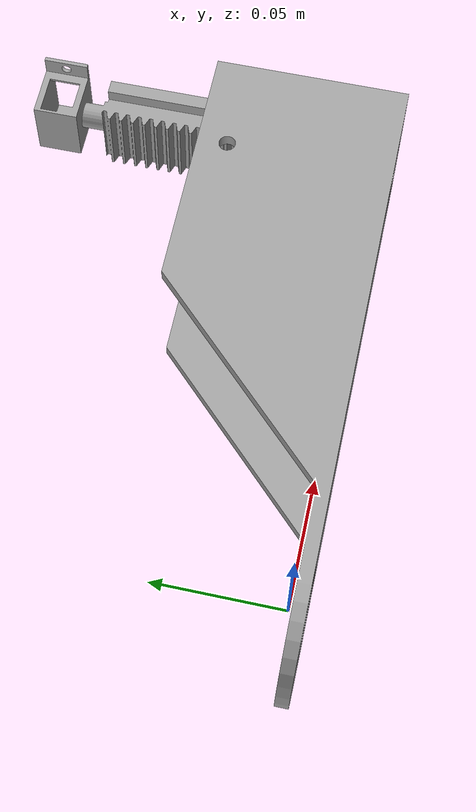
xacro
<?xml version="1.0"?>
<robot xmlns:xacro="http://www.ros.org/wiki/xacro" name="Scara_Final_macro">

  <!-- DEFINICIÓN DE LA MACRO -->
  <xacro:macro name="Scara_Final" params="prefix">

    <!-- Links -->
    <link name="${prefix}base_link">
      <inertial>
        <origin xyz="0.132907 0.020051 0.000111" rpy="0 0 0"/>
        <mass value="1.611636"/>
        <inertia ixx="1.842877e-03" ixy="-1.008885e-03" ixz="-6.378591e-07"
                 iyy="6.440245e-03" iyz="-1.377925e-06" izz="6.343043e-03"/>
      </inertial>
      <visual>
        <origin xyz="0.000000 0.000000 0.000000" rpy="3.141593 0.000000 0.000000"/>
        <geometry>
          <mesh filename="package://Scara_Final_description/meshes/Scara_Final/base_link.dae" scale="1 1 1"/>
        </geometry>
        <material name="Acero"/>
      </visual>
      <collision>
        <origin xyz="0.000000 0.000000 0.000000" rpy="3.141593 0.000000 0.000000"/>
        <geometry>
          <mesh filename="package://Scara_Final_description/meshes/Scara_Final/base_link.dae" scale="1 1 1"/>
        </geometry>
      </collision>
    </link>

    <link name="${prefix}Cremallera2">
      <inertial>
        <origin xyz="-0.252371 -0.157170 -0.024697" rpy="0 0 0"/>
        <mass value="0.375726"/>
        <inertia ixx="3.455143e-05" ixy="1.171535e-06" ixz="1.098812e-06"
                 iyy="4.475029e-04" iyz="2.998619e-08" izz="4.328522e-04"/>
      </inertial>
      <visual>
        <origin xyz="-0.308358 -0.165300 -0.009650" rpy="0.000000 0.000000 0.000000"/>
        <geometry>
          <mesh filename="package://Scara_Final_description/meshes/Scara_Final/Cremallera2.dae" scale="1 1 1"/>
        </geometry>
        <material name="Acero"/>
      </visual>
      <collision>
        <origin xyz="-0.308358 -0.165300 -0.009650" rpy="0.000000 0.000000 0.000000"/>
        <geometry>
          <mesh filename="package://Scara_Final_description/meshes/Scara_Final/Cremallera2.dae" scale="1 1 1"/>
        </geometry>
      </collision>
    </link>

    <!-- Joints -->
    <joint name="${prefix}Corredera_4" type="prismatic">
      <parent link="${prefix}base_link"/>
      <child link="${prefix}Cremallera2"/>
      <origin xyz="0.030900 0.291858 0.024300" rpy="0.000000 0.000000 1.570796"/>
      <axis xyz="1.000000 0.000000 0.000000"/>
      <limit lower="0.015000" upper="0.040000" effort="100.0" velocity="1.00"/>
    </joint>

    <!-- ROS 2 control -->
    <ros2_control name="${prefix}Scara_Final_system" type="system">
  <hardware>
    <plugin>gz_ros2_control/GazeboSimSystem</plugin>
  </hardware>

  <joint name="${prefix}Revoluci_n_1">
    <command_interface name="position"/>
    <state_interface name="position"><param name="initial_value">0.0</param></state_interface>
    <state_interface name="velocity"/>
  </joint>

  <joint name="${prefix}Revoluci_n_2">
    <command_interface name="position"/>
    <state_interface name="position"><param name="initial_value">0.0</param></state_interface>
    <state_interface name="velocity"/>
  </joint>

  <joint name="${prefix}Corredera_4">
    <command_interface name="position"/>
    <state_interface name="position"><param name="initial_value">0.0</param></state_interface>
    <state_interface name="velocity"/>
  </joint>
</ros2_control>

  </xacro:macro>

  <!-- LLAMADA A LA MACRO (INDISPENSABLE) -->
  <xacro:Scara_Final prefix=""/>

  <gazebo>
    <plugin filename="gz_ros2_control-system" name="gz_ros2_control::GazeboSimROS2ControlPlugin">
      <parameters>$(find Scara_Final_description)/config/controllers.yaml</parameters>
    </plugin>
  </gazebo>

</robot>
